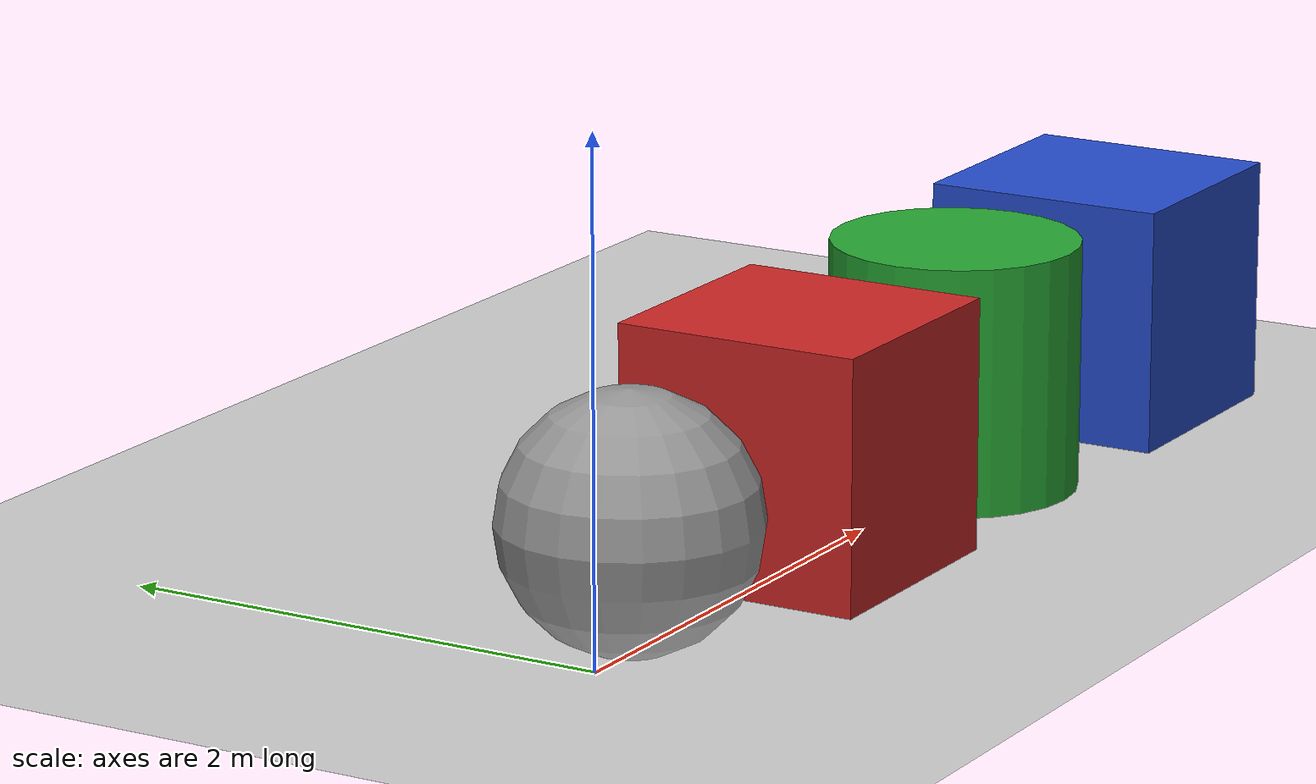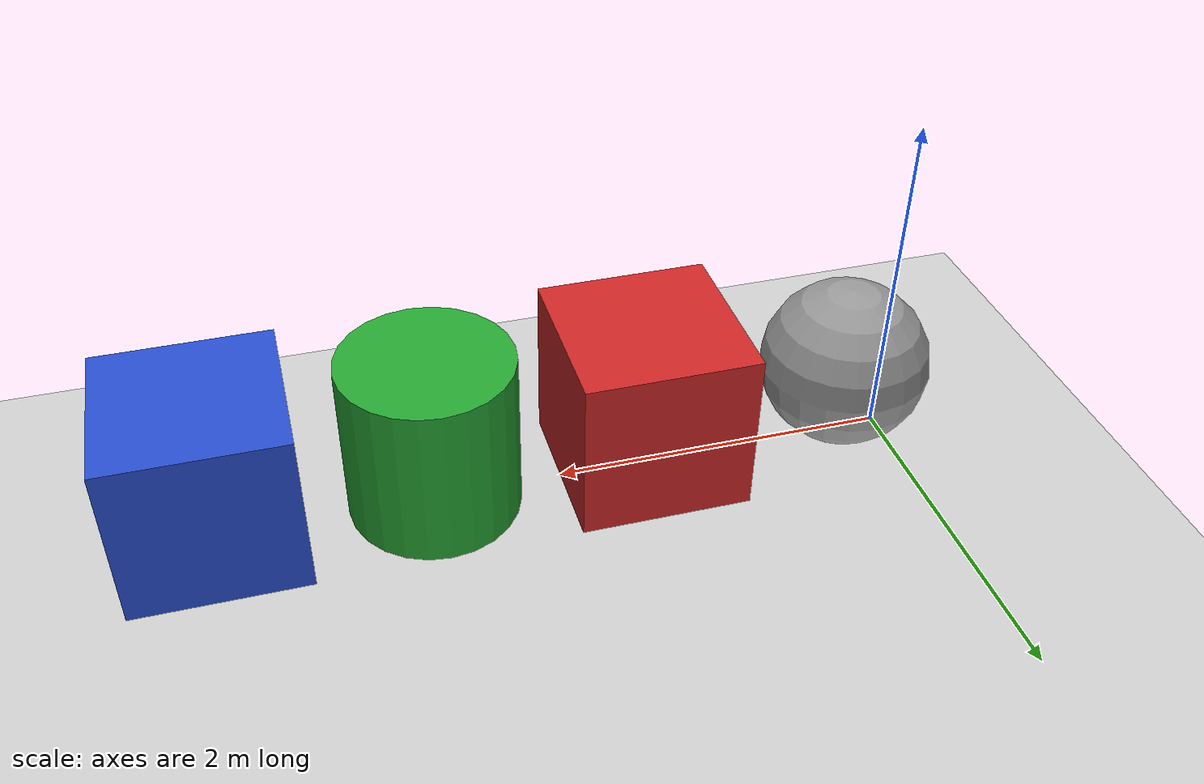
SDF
<?xml version="1.0" ?>
<sdf version="1.5">
  <world name="default">
    <physics type="ode">
      <gravity>0 0 -9.8</gravity>
    </physics>
    <include>
      <uri>model://sun</uri>
    </include>

    <include>
      <uri>model://ground_plane</uri>
    </include>

    <model name="model_00">
      <pose>0 0 0.5 0 0 0</pose>
      <link name="link_00">
        <pose>0.25 0 0 0 0 0</pose>
        <collision name="collision_00">
          <geometry>
            <sphere>
              <radius>0.5</radius>
            </sphere>
          </geometry>
        </collision>
        <visual name="visual_00">
          <geometry>
            <sphere>
              <radius>0.5</radius>
            </sphere>
          </geometry>
          <material>
            <script>
              <uri>file://media/materials/scripts/gazebo.material</uri>
              <name>Gazebo/Grey</name>
            </script>
          </material>
        </visual>
      </link>

      <model name="model_01">
        <pose>1.25 0 0.0 0 0 0</pose>
        <link name="link_01">
          <pose>0.25 0 0.0 0 0 0</pose>
          <collision name="collision_01">
            <geometry>
              <box>
                <size>1 1 1</size>
              </box>
            </geometry>
          </collision>
          <visual name="visual_01">
            <geometry>
              <box>
                <size>1 1 1</size>
              </box>
            </geometry>
            <material>
              <script>
                <uri>file://media/materials/scripts/gazebo.material</uri>
                <name>Gazebo/Red</name>
              </script>
            </material>
          </visual>
        </link>
        <model name="model_02">
          <pose>1.25 0 0.0 0 0 0</pose>
          <link name="link_02">
            <pose>0.25 0 0.0 0 0 0</pose>
            <collision name="collision_02">
              <geometry>
                <cylinder>
                  <radius>0.5</radius>
                  <length>1</length>
                </cylinder>
              </geometry>
            </collision>
            <visual name="visual_02">
              <geometry>
                <cylinder>
                  <radius>0.5</radius>
                  <length>1</length>
                </cylinder>
              </geometry>
              <material>
                <script>
                  <uri>file://media/materials/scripts/gazebo.material</uri>
                  <name>Gazebo/Green</name>
                </script>
              </material>
            </visual>
          </link>
          <model name="model_03">
            <pose>1.25 0 0.0 0 0 0</pose>
            <link name="link_03">
              <pose>0.25 0 0.0 0 0 0</pose>
              <collision name="collision_03">
                <geometry>
                  <box>
                    <size>1 1 1</size>
                  </box>
                </geometry>
              </collision>
              <visual name="visual_03">
                <geometry>
                  <box>
                    <size>1 1 1</size>
                  </box>
                </geometry>
                <material>
                  <script>
                    <uri>file://media/materials/scripts/gazebo.material</uri>
                    <name>Gazebo/Blue</name>
                  </script>
                </material>
              </visual>
            </link>
            <plugin filename="libRegionEventBoxPlugin.so" name="region_event_box">
              <event>
                <name>model_in_region_event_box</name>
                <type>inclusion</type>
                <active>true</active>
              </event>
            </plugin>
            <link name="imu_link">
              <inertial>
                <pose>0 0 0 0 0 0</pose>
                <mass>0.15</mass>
                <inertia>
                  <ixx>0.00001</ixx>
                  <ixy>0</ixy>
                  <ixz>0</ixz>
                  <iyy>0.00002</iyy>
                  <iyz>0</iyz>
                  <izz>0.00002</izz>
                </inertia>
              </inertial>
              <sensor name="imu_sensor" type="imu">
                <pose>0 0 0 3.141593 0 0</pose>
                <always_on>0</always_on>
                <update_rate>1000.0</update_rate>
              </sensor>
            </link>
            <joint name="imu_joint" type="revolute">
              <child>model_01::model_02::model_03::imu_link</child>
              <parent>model_01::model_02::model_03::link_03</parent>
              <axis>
                <xyz>0 0 1</xyz>
              </axis>
            </joint>
          </model>
        </model>
      </model>

      <joint name="joint_00" type="revolute">
        <parent>link_00</parent>
        <child>model_01::link_01</child>
        <pose>0.0 0.0 0.0 0.0 0.0 0.0</pose>
        <axis>
          <xyz>1.0 0.0 0.0</xyz>
        </axis>
      </joint>

      <joint name="joint_01" type="revolute">
        <parent>model_01::link_01</parent>
        <child>model_01::model_02::link_02</child>
        <pose>0.0 0.0 0.0 0.0 0.0 0.0</pose>
        <axis>
          <xyz>1.0 0.0 0.0</xyz>
        </axis>
      </joint>

      <joint name="joint_02" type="revolute">
        <parent>model_01::model_02::link_02</parent>
        <child>model_01::model_02::model_03::link_03</child>
        <pose>0.0 0.0 0.0 0.0 0.0 0.0</pose>
        <axis>
          <xyz>1.0 0.0 0.0</xyz>
        </axis>
      </joint>
    </model>

  </world>
</sdf>
